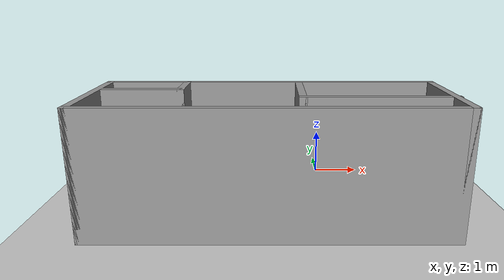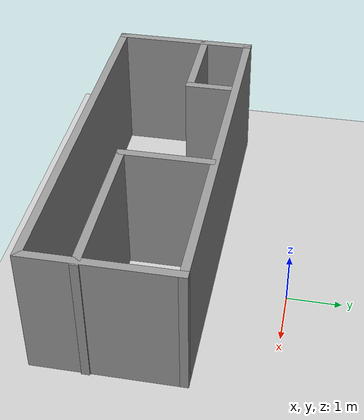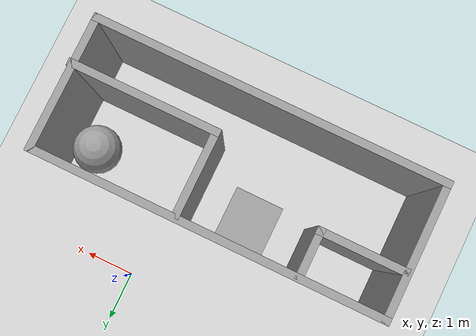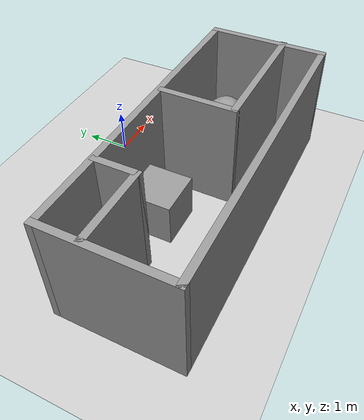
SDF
<sdf version="1.7">
 <world name="default">
  <light name="sun" type="directional">
   <pose>0 0 10 0 -0 0</pose>
   <diffuse>0.8 0.8 0.8 1</diffuse>
   <specular>0.2 0.2 0.2 1</specular>
   <attenuation>
    <range>1000</range>
    <constant>0.9</constant>
    <linear>0.01</linear>
    <quadratic>0.001</quadratic>
   </attenuation>
   <direction>-0.5 0.1 -0.9</direction>
   <spot><inner_angle>0</inner_angle><outer_angle>0</outer_angle><falloff>0</falloff></spot>
  </light>
  <model name="ground_plane">
   <static>1</static>
   <link name="link">
    <collision name="collision">
     <geometry><plane><normal>0 0 1</normal><size>100 100</size></plane></geometry>
     <surface><friction><ode><mu>100</mu><mu2>50</mu2></ode></friction></surface>
    </collision>
    <visual name="visual">
     <cast_shadows>0</cast_shadows>
     <geometry><plane><normal>0 0 1</normal><size>100 100</size></plane></geometry>
     <material>
      <script><uri>file://media/materials/scripts/gazebo.material</uri><name>Gazebo/Grey</name></script>
     </material>
    </visual>
   </link>
  </model>
  <gravity>0 0 -9.8</gravity>
  <magnetic_field>6e-06 2.3e-05 -4.2e-05</magnetic_field>
  <atmosphere type="adiabatic"/>
  <physics type="ode">
   <max_step_size>0.001</max_step_size>
   <real_time_factor>1</real_time_factor>
   <real_time_update_rate>1000</real_time_update_rate>
  </physics>
  <scene><ambient>0.4 0.4 0.4 1</ambient><background>0.7 0.7 0.7 1</background><shadows>1</shadows></scene>
  <audio><device>default</device></audio>
  <spherical_coordinates>
   <surface_model>EARTH_WGS84</surface_model>
   <latitude_deg>0</latitude_deg>
   <longitude_deg>0</longitude_deg>
   <elevation>0</elevation>
   <heading_deg>0</heading_deg>
  </spherical_coordinates>
  <model name="room">
   <pose>-1.14 -2.0575 0 0 -0 0</pose>
   <link name="Wall_0">
    <collision name="Wall_0_Collision">
     <geometry><box><size>2.75 0.15 2.5</size></box></geometry>
     <pose>0 0 1.25 0 -0 0</pose>
    </collision>
    <visual name="Wall_0_Visual">
     <pose>0 0 1.25 0 -0 0</pose>
     <geometry><box><size>2.75 0.15 2.5</size></box></geometry>
     <material>
      <script><uri>file://media/materials/scripts/gazebo.material</uri><name>Gazebo/Grey</name></script>
      <ambient>1 1 1 1</ambient>
     </material>
     <meta><layer>0</layer></meta>
    </visual>
    <pose>-3.44 -0.6825 0 0 -0 -1.5708</pose>
   </link>
   <link name="Wall_1">
    <collision name="Wall_1_Collision">
     <geometry><box><size>7 0.15 2.5</size></box></geometry>
     <pose>0 0 1.25 0 -0 0</pose>
    </collision>
    <visual name="Wall_1_Visual">
     <pose>0 0 1.25 0 -0 0</pose>
     <geometry><box><size>7 0.15 2.5</size></box></geometry>
     <material>
      <script><uri>file://media/materials/scripts/gazebo.material</uri><name>Gazebo/Grey</name></script>
      <ambient>1 1 1 1</ambient>
     </material>
     <meta><layer>0</layer></meta>
    </visual>
    <pose>-0.015 -1.9825 0 0 -0 0</pose>
   </link>
   <link name="Wall_2">
    <collision name="Wall_2_Collision">
     <geometry><box><size>2.75 0.15 2.5</size></box></geometry>
     <pose>0 0 1.25 0 -0 0</pose>
    </collision>
    <visual name="Wall_2_Visual">
     <pose>0 0 1.25 0 -0 0</pose>
     <geometry><box><size>2.75 0.15 2.5</size></box></geometry>
     <material>
      <script><uri>file://media/materials/scripts/gazebo.material</uri><name>Gazebo/Grey</name></script>
      <ambient>1 1 1 1</ambient>
     </material>
     <meta><layer>0</layer></meta>
    </visual>
    <pose>3.41 -0.6825 0 0 -0 1.5708</pose>
   </link>
   <link name="Wall_3">
    <collision name="Wall_3_Collision">
     <geometry><box><size>7 0.15 2.5</size></box></geometry>
     <pose>0 0 1.25 0 -0 0</pose>
    </collision>
    <visual name="Wall_3_Visual">
     <pose>0 0 1.25 0 -0 0</pose>
     <geometry><box><size>7 0.15 2.5</size></box></geometry>
     <material>
      <script><uri>file://media/materials/scripts/gazebo.material</uri><name>Gazebo/Grey</name></script>
      <ambient>1 1 1 1</ambient>
     </material>
     <meta><layer>0</layer></meta>
    </visual>
    <pose>-0.015 0.6175 0 0 -0 3.14159</pose>
   </link>
   <link name="Wall_5">
    <collision name="Wall_5_Collision">
     <geometry><box><size>1.75 0.15 2.5</size></box></geometry>
     <pose>0 0 1.25 0 -0 0</pose>
    </collision>
    <visual name="Wall_5_Visual">
     <pose>0 0 1.25 0 -0 0</pose>
     <geometry><box><size>1.75 0.15 2.5</size></box></geometry>
     <material>
      <script><uri>file://media/materials/scripts/gazebo.material</uri><name>Gazebo/Grey</name></script>
      <ambient>1 1 1 1</ambient>
     </material>
     <meta><layer>0</layer></meta>
    </visual>
    <pose>-2.59 -0.2725 0 0 -0 0</pose>
   </link>
   <link name="Wall_6">
    <collision name="Wall_6_Collision">
     <geometry><box><size>1 0.15 2.5</size></box></geometry>
     <pose>0 0 1.25 0 -0 0</pose>
    </collision>
    <visual name="Wall_6_Visual">
     <pose>0 0 1.25 0 -0 0</pose>
     <geometry><box><size>1 0.15 2.5</size></box></geometry>
     <material>
      <script><uri>file://media/materials/scripts/gazebo.material</uri><name>Gazebo/Grey</name></script>
      <ambient>1 1 1 1</ambient>
     </material>
     <meta><layer>0</layer></meta>
    </visual>
    <pose>-1.79 0.1525 0 0 -0 1.5708</pose>
   </link>
   <link name="Wall_8">
    <collision name="Wall_8_Collision">
     <geometry><box><size>1.75 0.15 2.5</size></box></geometry>
     <pose>0 0 1.25 0 -0 0</pose>
    </collision>
    <visual name="Wall_8_Visual">
     <pose>0 0 1.25 0 -0 0</pose>
     <geometry><box><size>1.75 0.15 2.5</size></box></geometry>
     <material>
      <script><uri>file://media/materials/scripts/gazebo.material</uri><name>Gazebo/Grey</name></script>
      <ambient>1 1 1 1</ambient>
     </material>
     <meta><layer>0</layer></meta>
    </visual>
    <pose>0.59 -0.2525 0 0 -0 -1.5708</pose>
   </link>
   <link name="Wall_9">
    <collision name="Wall_9_Collision">
     <geometry><box><size>3 0.15 2.5</size></box></geometry>
     <pose>0 0 1.25 0 -0 0</pose>
    </collision>
    <visual name="Wall_9_Visual">
     <pose>0 0 1.25 0 -0 0</pose>
     <geometry><box><size>3 0.15 2.5</size></box></geometry>
     <material>
      <script><uri>file://media/materials/scripts/gazebo.material</uri><name>Gazebo/Grey</name></script>
      <ambient>1 1 1 1</ambient>
     </material>
     <meta><layer>0</layer></meta>
    </visual>
    <pose>2.015 -1.0525 0 0 -0 0</pose>
   </link>
   <static>1</static>
  </model>
  <model name="unit_sphere">
   <pose>1.695 -2.01501 0.5 0.081761 -0.006826 0.062044</pose>
   <link name="link">
    <inertial>
     <mass>1</mass>
     <inertia><ixx>0.1</ixx><ixy>0</ixy><ixz>0</ixz><iyy>0.1</iyy><iyz>0</iyz><izz>0.1</izz></inertia>
    </inertial>
    <collision name="collision"><geometry><sphere><radius>0.5</radius></sphere></geometry></collision>
    <visual name="visual">
     <geometry><sphere><radius>0.5</radius></sphere></geometry>
     <material>
      <script><name>Gazebo/Grey</name><uri>file://media/materials/scripts/gazebo.material</uri></script>
     </material>
    </visual>
   </link>
  </model>
  <model name="unit_box">
   <pose>-1.73507 -2.015 0.5 0 0 -6e-06</pose>
   <link name="link">
    <inertial>
     <mass>1</mass>
     <inertia>
      <ixx>0.166667</ixx>
      <ixy>0</ixy>
      <ixz>0</ixz>
      <iyy>0.166667</iyy>
      <iyz>0</iyz>
      <izz>0.166667</izz>
     </inertia>
    </inertial>
    <collision name="collision"><geometry><box><size>1 1 1</size></box></geometry></collision>
    <visual name="visual">
     <geometry><box><size>1 1 1</size></box></geometry>
     <material>
      <script><name>Gazebo/Grey</name><uri>file://media/materials/scripts/gazebo.material</uri></script>
     </material>
    </visual>
   </link>
  </model>
 </world>
</sdf>
